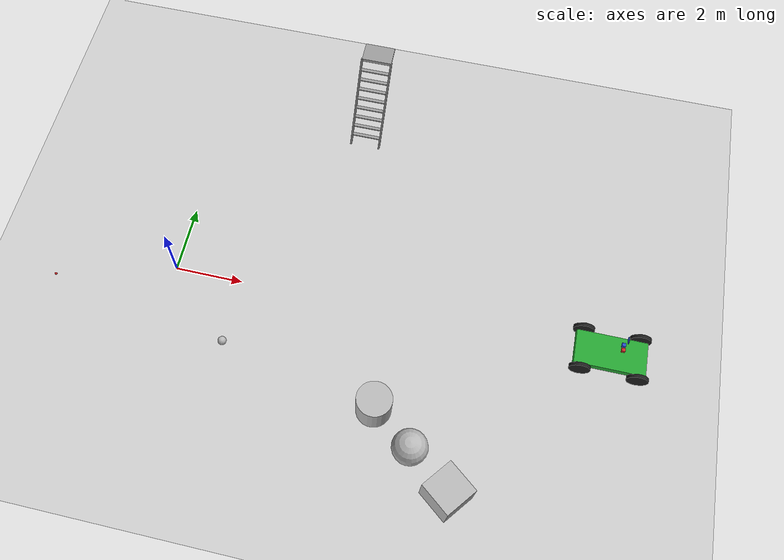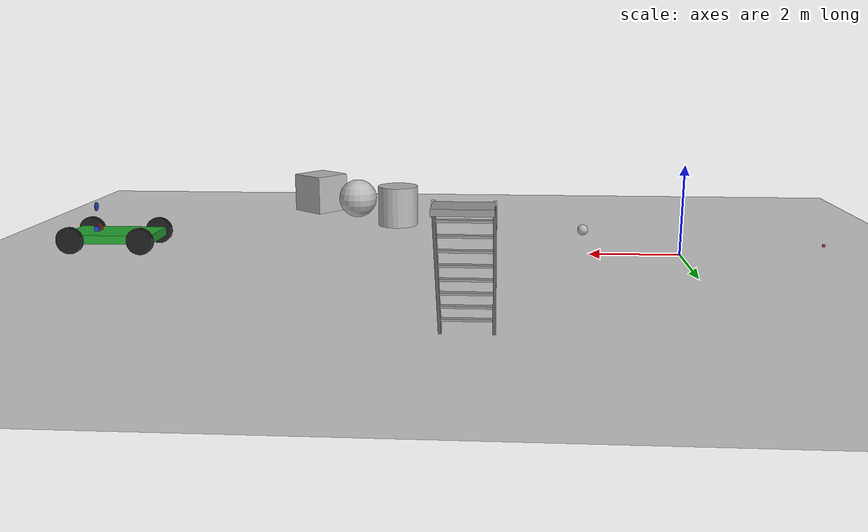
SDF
<sdf version="1.6">
 <world name="default">
  <light name="sun" type="directional">
   <pose>0 0 15 0 -0 0</pose>
   <diffuse>1 1 1 1</diffuse>
   <specular>0.1 0.1 0.1 1</specular>
   <attenuation>
    <range>1000</range>
    <constant>0.9</constant>
    <linear>0.01</linear>
    <quadratic>0.001</quadratic>
   </attenuation>
   <direction>-0.5 0.5 -1</direction>
  </light>
  <model name="ground_plane">
   <static>1</static>
   <link name="link">
    <collision name="collision">
     <geometry><plane><normal>0 0 1</normal><size>100 100</size></plane></geometry>
     <surface><friction><ode><mu>100</mu><mu2>50</mu2></ode></friction></surface>
    </collision>
    <visual name="visual">
     <cast_shadows>0</cast_shadows>
     <geometry><plane><normal>0 0 1</normal><size>100 100</size></plane></geometry>
     <material>
      <script><uri>file://media/materials/scripts/gazebo.material</uri><name>Gazebo/Grey</name></script>
     </material>
    </visual>
   </link>
  </model>
  <gravity>0 0 -9.8</gravity>
  <magnetic_field>6e-06 2.3e-05 -4.2e-05</magnetic_field>
  <atmosphere type="adiabatic"/>
  <physics name="default_physics" default="0" type="ode">
   <max_step_size>0.001</max_step_size>
   <real_time_factor>1</real_time_factor>
   <real_time_update_rate>1000</real_time_update_rate>
  </physics>
  <scene><ambient>0.4 0.4 0.4 1</ambient><background>0.7 0.7 0.7 1</background><shadows>1</shadows></scene>
  <spherical_coordinates>
   <surface_model>EARTH_WGS84</surface_model>
   <latitude_deg>0</latitude_deg>
   <longitude_deg>0</longitude_deg>
   <elevation>0</elevation>
   <heading_deg>0</heading_deg>
  </spherical_coordinates>
  <model name="ladder_60deg_0rails">
   <static>1</static>
   <link name="step0">
    <pose>0 0.15396 0.266667 0 -0 0</pose>
    <inertial>
     <mass>9.75482</mass>
     <inertia>
      <ixx>0.00957124</ixx>
      <iyy>0.65963</iyy>
      <izz>0.666842</izz>
      <ixy>0</ixy>
      <ixz>0</ixz>
      <iyz>0</iyz>
     </inertia>
    </inertial>
    <collision name="collision"><geometry><box><size>0.9 0.1016 0.0381</size></box></geometry></collision>
    <visual name="visual">
     <geometry><box><size>0.9 0.1016 0.0381</size></box></geometry>
     <material>
      <script><uri>file://media/materials/scripts/gazebo.material</uri><name>Gazebo/Grey</name></script>
     </material>
    </visual>
   </link>
   <link name="step1">
    <pose>0 0.30792 0.533333 0 -0 0</pose>
    <inertial>
     <mass>9.75482</mass>
     <inertia>
      <ixx>0.00957124</ixx>
      <iyy>0.65963</iyy>
      <izz>0.666842</izz>
      <ixy>0</ixy>
      <ixz>0</ixz>
      <iyz>0</iyz>
     </inertia>
    </inertial>
    <collision name="collision"><geometry><box><size>0.9 0.1016 0.0381</size></box></geometry></collision>
    <visual name="visual">
     <geometry><box><size>0.9 0.1016 0.0381</size></box></geometry>
     <material>
      <script><uri>file://media/materials/scripts/gazebo.material</uri><name>Gazebo/Grey</name></script>
     </material>
    </visual>
   </link>
   <link name="step2">
    <pose>0 0.46188 0.8 0 -0 0</pose>
    <inertial>
     <mass>9.75482</mass>
     <inertia>
      <ixx>0.00957124</ixx>
      <iyy>0.65963</iyy>
      <izz>0.666842</izz>
      <ixy>0</ixy>
      <ixz>0</ixz>
      <iyz>0</iyz>
     </inertia>
    </inertial>
    <collision name="collision"><geometry><box><size>0.9 0.1016 0.0381</size></box></geometry></collision>
    <visual name="visual">
     <geometry><box><size>0.9 0.1016 0.0381</size></box></geometry>
     <material>
      <script><uri>file://media/materials/scripts/gazebo.material</uri><name>Gazebo/Grey</name></script>
     </material>
    </visual>
   </link>
   <link name="step3">
    <pose>0 0.61584 1.06667 0 -0 0</pose>
    <inertial>
     <mass>9.75482</mass>
     <inertia>
      <ixx>0.00957124</ixx>
      <iyy>0.65963</iyy>
      <izz>0.666842</izz>
      <ixy>0</ixy>
      <ixz>0</ixz>
      <iyz>0</iyz>
     </inertia>
    </inertial>
    <collision name="collision"><geometry><box><size>0.9 0.1016 0.0381</size></box></geometry></collision>
    <visual name="visual">
     <geometry><box><size>0.9 0.1016 0.0381</size></box></geometry>
     <material>
      <script><uri>file://media/materials/scripts/gazebo.material</uri><name>Gazebo/Grey</name></script>
     </material>
    </visual>
   </link>
   <link name="step4">
    <pose>0 0.7698 1.33333 0 -0 0</pose>
    <inertial>
     <mass>9.75482</mass>
     <inertia>
      <ixx>0.00957124</ixx>
      <iyy>0.65963</iyy>
      <izz>0.666842</izz>
      <ixy>0</ixy>
      <ixz>0</ixz>
      <iyz>0</iyz>
     </inertia>
    </inertial>
    <collision name="collision"><geometry><box><size>0.9 0.1016 0.0381</size></box></geometry></collision>
    <visual name="visual">
     <geometry><box><size>0.9 0.1016 0.0381</size></box></geometry>
     <material>
      <script><uri>file://media/materials/scripts/gazebo.material</uri><name>Gazebo/Grey</name></script>
     </material>
    </visual>
   </link>
   <link name="step5">
    <pose>0 0.92376 1.6 0 -0 0</pose>
    <inertial>
     <mass>9.75482</mass>
     <inertia>
      <ixx>0.00957124</ixx>
      <iyy>0.65963</iyy>
      <izz>0.666842</izz>
      <ixy>0</ixy>
      <ixz>0</ixz>
      <iyz>0</iyz>
     </inertia>
    </inertial>
    <collision name="collision"><geometry><box><size>0.9 0.1016 0.0381</size></box></geometry></collision>
    <visual name="visual">
     <geometry><box><size>0.9 0.1016 0.0381</size></box></geometry>
     <material>
      <script><uri>file://media/materials/scripts/gazebo.material</uri><name>Gazebo/Grey</name></script>
     </material>
    </visual>
   </link>
   <link name="step6">
    <pose>0 1.07772 1.86667 0 -0 0</pose>
    <inertial>
     <mass>9.75482</mass>
     <inertia>
      <ixx>0.00957124</ixx>
      <iyy>0.65963</iyy>
      <izz>0.666842</izz>
      <ixy>0</ixy>
      <ixz>0</ixz>
      <iyz>0</iyz>
     </inertia>
    </inertial>
    <collision name="collision"><geometry><box><size>0.9 0.1016 0.0381</size></box></geometry></collision>
    <visual name="visual">
     <geometry><box><size>0.9 0.1016 0.0381</size></box></geometry>
     <material>
      <script><uri>file://media/materials/scripts/gazebo.material</uri><name>Gazebo/Grey</name></script>
     </material>
    </visual>
   </link>
   <link name="step7">
    <pose>0 1.23168 2.13333 0 -0 0</pose>
    <inertial>
     <mass>9.75482</mass>
     <inertia>
      <ixx>0.00957124</ixx>
      <iyy>0.65963</iyy>
      <izz>0.666842</izz>
      <ixy>0</ixy>
      <ixz>0</ixz>
      <iyz>0</iyz>
     </inertia>
    </inertial>
    <collision name="collision"><geometry><box><size>0.9 0.1016 0.0381</size></box></geometry></collision>
    <visual name="visual">
     <geometry><box><size>0.9 0.1016 0.0381</size></box></geometry>
     <material>
      <script><uri>file://media/materials/scripts/gazebo.material</uri><name>Gazebo/Grey</name></script>
     </material>
    </visual>
   </link>
   <link name="landing">
    <pose>0 1.68564 2.4 0 -0 0</pose>
    <inertial>
     <mass>57.6072</mass>
     <inertia><ixx>1.73518</ixx><iyy>3.89545</iyy><izz>5.6167</izz><ixy>0</ixy><ixz>0</ixz><iyz>0</iyz></inertia>
    </inertial>
    <collision name="collision"><geometry><box><size>0.9 0.6 0.1016</size></box></geometry></collision>
    <visual name="visual">
     <geometry><box><size>0.9 0.6 0.1016</size></box></geometry>
     <material>
      <script><uri>file://media/materials/scripts/gazebo.material</uri><name>Gazebo/Grey</name></script>
     </material>
    </visual>
   </link>
   <link name="left_side_wall">
    <pose>-0.45 0.69282 1.2 1.0472 -0 0</pose>
    <collision name="collision"><geometry><box><size>0.0508 2.85128 0.13</size></box></geometry></collision>
    <visual name="visual">
     <geometry><box><size>0.0508 2.85128 0.13</size></box></geometry>
     <material>
      <script><uri>file://media/materials/scripts/gazebo.material</uri><name>Gazebo/Grey</name></script>
     </material>
    </visual>
   </link>
   <link name="right_side_wall">
    <pose>0.45 0.69282 1.2 1.0472 -0 0</pose>
    <collision name="collision"><geometry><box><size>0.0508 2.85128 0.13</size></box></geometry></collision>
    <visual name="visual">
     <geometry><box><size>0.0508 2.85128 0.13</size></box></geometry>
     <material>
      <script><uri>file://media/materials/scripts/gazebo.material</uri><name>Gazebo/Grey</name></script>
     </material>
    </visual>
   </link>
   <pose>4.51503 5.56877 0 0 -0 0</pose>
  </model>
  <model name="textured_shapes">
   <pose>7.78933 -3.86858 0.5 0 -0 0.900449</pose>
   <link name="box">
    <pose>0 -1.5 0 0 -0 0</pose>
    <collision name="collision"><geometry><box><size>1 1 1</size></box></geometry></collision>
    <visual name="visual">
     <geometry><box><size>1 1 1</size></box></geometry>
     <material>
      <script>
       <uri>model://textured_shapes/materials/scripts</uri>
       <uri>model://textured_shapes/materials/textures</uri>
       <name>TexturedShape/Squares</name>
      </script>
     </material>
    </visual>
    <inertial>
     <inertia><ixx>1</ixx><ixy>0</ixy><ixz>0</ixz><iyy>1</iyy><iyz>0</iyz><izz>1</izz></inertia>
     <mass>1</mass>
    </inertial>
   </link>
   <link name="sphere">
    <collision name="collision"><geometry><sphere><radius>0.5</radius></sphere></geometry></collision>
    <visual name="visual">
     <geometry><sphere><radius>0.5</radius></sphere></geometry>
     <material>
      <script>
       <uri>model://textured_shapes/materials/scripts</uri>
       <uri>model://textured_shapes/materials/textures</uri>
       <name>TexturedShape/Squares</name>
      </script>
     </material>
    </visual>
    <inertial>
     <inertia><ixx>1</ixx><ixy>0</ixy><ixz>0</ixz><iyy>1</iyy><iyz>0</iyz><izz>1</izz></inertia>
     <mass>1</mass>
    </inertial>
   </link>
   <link name="cylinder">
    <pose>0 1.5 0 0 -0 0</pose>
    <collision name="collision">
     <geometry><cylinder><radius>0.5</radius><length>1</length></cylinder></geometry>
    </collision>
    <visual name="visual">
     <geometry><cylinder><radius>0.5</radius><length>1</length></cylinder></geometry>
     <material>
      <script>
       <uri>model://textured_shapes/materials/scripts</uri>
       <uri>model://textured_shapes/materials/textures</uri>
       <name>TexturedShape/Squares</name>
      </script>
     </material>
    </visual>
    <inertial>
     <inertia><ixx>1</ixx><ixy>0</ixy><ixz>0</ixz><iyy>1</iyy><iyz>0</iyz><izz>1</izz></inertia>
     <mass>1</mass>
    </inertial>
   </link>
  </model>
  <model name="car">
   <link name="chassis">
    <pose>0 0 0.3 0 -0 0</pose>
    <collision name="collision"><geometry><box><size>2 1 0.2</size></box></geometry></collision>
    <visual name="visual">
     <geometry><box><size>2 1 0.2</size></box></geometry>
     <material>
      <script><uri>file://media/materials/scripts/gazebo.material</uri><name>Gazebo/Green</name></script>
     </material>
    </visual>
    <inertial>
     <inertia><ixx>1</ixx><ixy>0</ixy><ixz>0</ixz><iyy>1</iyy><iyz>0</iyz><izz>1</izz></inertia>
     <mass>1</mass>
    </inertial>
   </link>
   <link name="front_left_wheel">
    <pose>0.8 0.6 0.3 -0 1.5707 1.5707</pose>
    <collision name="collision">
     <geometry><cylinder><radius>0.3</radius><length>0.1</length></cylinder></geometry>
    </collision>
    <visual name="visual">
     <geometry><cylinder><radius>0.3</radius><length>0.1</length></cylinder></geometry>
     <material>
      <script><uri>file://media/materials/scripts/gazebo.material</uri><name>Gazebo/Black</name></script>
     </material>
    </visual>
    <inertial>
     <inertia><ixx>1</ixx><ixy>0</ixy><ixz>0</ixz><iyy>1</iyy><iyz>0</iyz><izz>1</izz></inertia>
     <mass>1</mass>
    </inertial>
   </link>
   <link name="front_right_wheel">
    <pose>0.8 -0.6 0.3 -0 1.5707 1.5707</pose>
    <collision name="collision">
     <geometry><cylinder><radius>0.3</radius><length>0.1</length></cylinder></geometry>
    </collision>
    <visual name="visual">
     <geometry><cylinder><radius>0.3</radius><length>0.1</length></cylinder></geometry>
     <material>
      <script><uri>file://media/materials/scripts/gazebo.material</uri><name>Gazebo/Black</name></script>
     </material>
    </visual>
    <inertial>
     <inertia><ixx>1</ixx><ixy>0</ixy><ixz>0</ixz><iyy>1</iyy><iyz>0</iyz><izz>1</izz></inertia>
     <mass>1</mass>
    </inertial>
   </link>
   <link name="back_right_wheel">
    <pose>-0.8 -0.6 0.3 -0 1.5707 1.5707</pose>
    <collision name="collision">
     <geometry><cylinder><radius>0.3</radius><length>0.1</length></cylinder></geometry>
    </collision>
    <visual name="visual">
     <geometry><cylinder><radius>0.3</radius><length>0.1</length></cylinder></geometry>
     <material>
      <script><uri>file://media/materials/scripts/gazebo.material</uri><name>Gazebo/Black</name></script>
     </material>
    </visual>
    <inertial>
     <inertia><ixx>1</ixx><ixy>0</ixy><ixz>0</ixz><iyy>1</iyy><iyz>0</iyz><izz>1</izz></inertia>
     <mass>1</mass>
    </inertial>
   </link>
   <link name="back_left_wheel">
    <pose>-0.8 0.6 0.3 -0 1.5707 1.5707</pose>
    <collision name="collision">
     <geometry><cylinder><radius>0.3</radius><length>0.1</length></cylinder></geometry>
    </collision>
    <visual name="visual">
     <geometry><cylinder><radius>0.3</radius><length>0.1</length></cylinder></geometry>
     <material>
      <script><uri>file://media/materials/scripts/gazebo.material</uri><name>Gazebo/Black</name></script>
     </material>
    </visual>
    <inertial>
     <inertia><ixx>1</ixx><ixy>0</ixy><ixz>0</ixz><iyy>1</iyy><iyz>0</iyz><izz>1</izz></inertia>
     <mass>1</mass>
    </inertial>
   </link>
   <link name="gas_pedal">
    <pose>0.3 0.1 0.5 0 -0 0</pose>
    <collision name="collision"><geometry><box><size>0.1 0.1 0.1</size></box></geometry></collision>
    <visual name="visual">
     <geometry><box><size>0.1 0.1 0.1</size></box></geometry>
     <material>
      <script><uri>file://media/materials/scripts/gazebo.material</uri><name>Gazebo/Red</name></script>
     </material>
    </visual>
    <inertial>
     <inertia><ixx>1</ixx><ixy>0</ixy><ixz>0</ixz><iyy>1</iyy><iyz>0</iyz><izz>1</izz></inertia>
     <mass>1</mass>
    </inertial>
   </link>
   <link name="brake_pedal">
    <pose>0.3 0.25 0.5 0 -0 0</pose>
    <collision name="collision"><geometry><box><size>0.1 0.1 0.1</size></box></geometry></collision>
    <visual name="visual">
     <geometry><box><size>0.1 0.1 0.1</size></box></geometry>
     <material>
      <script><uri>file://media/materials/scripts/gazebo.material</uri><name>Gazebo/Blue</name></script>
     </material>
    </visual>
    <inertial>
     <inertia><ixx>1</ixx><ixy>0</ixy><ixz>0</ixz><iyy>1</iyy><iyz>0</iyz><izz>1</izz></inertia>
     <mass>1</mass>
    </inertial>
   </link>
   <link name="steering_wheel">
    <pose>0.3 0.2 1 0 1.5707 0</pose>
    <collision name="collision">
     <geometry><cylinder><radius>0.1</radius><length>0.01</length></cylinder></geometry>
    </collision>
    <visual name="visual">
     <geometry><cylinder><radius>0.1</radius><length>0.01</length></cylinder></geometry>
     <material>
      <script><uri>file://media/materials/scripts/gazebo.material</uri><name>Gazebo/Blue</name></script>
     </material>
    </visual>
    <inertial>
     <inertia><ixx>1</ixx><ixy>0</ixy><ixz>0</ixz><iyy>1</iyy><iyz>0</iyz><izz>1</izz></inertia>
     <mass>1</mass>
    </inertial>
   </link>
   <joint name="gas_joint" type="prismatic">
    <parent>chassis</parent>
    <child>gas_pedal</child>
    <axis>
     <xyz>1 0 0</xyz>
     <limit><lower>0</lower><upper>0.2</upper></limit>
     <use_parent_model_frame>1</use_parent_model_frame>
     <dynamics><spring_reference>0</spring_reference><spring_stiffness>0</spring_stiffness></dynamics>
    </axis>
   </joint>
   <joint name="brake_joint" type="prismatic">
    <parent>chassis</parent>
    <child>brake_pedal</child>
    <axis>
     <xyz>1 0 0</xyz>
     <limit><lower>0</lower><upper>0.2</upper></limit>
     <use_parent_model_frame>1</use_parent_model_frame>
     <dynamics><spring_reference>0</spring_reference><spring_stiffness>0</spring_stiffness></dynamics>
    </axis>
   </joint>
   <joint name="steering_joint" type="revolute">
    <parent>chassis</parent>
    <child>steering_wheel</child>
    <axis>
     <xyz>1 0 0</xyz>
     <limit><lower>-7.853</lower><upper>7.853</upper></limit>
     <use_parent_model_frame>1</use_parent_model_frame>
     <dynamics><spring_reference>0</spring_reference><spring_stiffness>0</spring_stiffness></dynamics>
    </axis>
   </joint>
   <joint name="front_left_joint" type="revolute2">
    <parent>chassis</parent>
    <child>front_left_wheel</child>
    <axis>
     <xyz>0 0 1</xyz>
     <limit><lower>8.32176e-06</lower><upper>8.32176e-06</upper></limit>
     <use_parent_model_frame>1</use_parent_model_frame>
     <dynamics><spring_reference>0</spring_reference><spring_stiffness>0</spring_stiffness></dynamics>
    </axis>
    <axis2>
     <xyz>0 1 0</xyz>
     <use_parent_model_frame>1</use_parent_model_frame>
     <dynamics><spring_reference>0</spring_reference><spring_stiffness>0</spring_stiffness></dynamics>
    </axis2>
    <physics><ode><limit><cfm>0</cfm><erp>0.9</erp></limit></ode></physics>
   </joint>
   <joint name="front_right_joint" type="revolute2">
    <parent>chassis</parent>
    <child>front_right_wheel</child>
    <axis>
     <xyz>0 0 1</xyz>
     <limit><lower>8.32176e-06</lower><upper>8.32176e-06</upper></limit>
     <use_parent_model_frame>1</use_parent_model_frame>
     <dynamics><spring_reference>0</spring_reference><spring_stiffness>0</spring_stiffness></dynamics>
    </axis>
    <axis2>
     <xyz>0 1 0</xyz>
     <use_parent_model_frame>1</use_parent_model_frame>
     <dynamics><spring_reference>0</spring_reference><spring_stiffness>0</spring_stiffness></dynamics>
    </axis2>
    <physics><ode><limit><cfm>0</cfm><erp>0.9</erp></limit></ode></physics>
   </joint>
   <joint name="back_right_joint" type="revolute2">
    <parent>chassis</parent>
    <child>back_right_wheel</child>
    <axis>
     <xyz>0 0 1</xyz>
     <limit><lower>0</lower><upper>0</upper></limit>
     <use_parent_model_frame>1</use_parent_model_frame>
     <dynamics><spring_reference>0</spring_reference><spring_stiffness>0</spring_stiffness></dynamics>
    </axis>
    <axis2>
     <xyz>0 1 0</xyz>
     <use_parent_model_frame>1</use_parent_model_frame>
     <dynamics><spring_reference>0</spring_reference><spring_stiffness>0</spring_stiffness></dynamics>
    </axis2>
    <physics><ode><limit><cfm>0</cfm><erp>0.9</erp></limit></ode></physics>
   </joint>
   <joint name="back_left_joint" type="revolute2">
    <parent>chassis</parent>
    <child>back_left_wheel</child>
    <axis>
     <xyz>0 0 1</xyz>
     <limit><lower>0</lower><upper>0</upper></limit>
     <use_parent_model_frame>1</use_parent_model_frame>
     <dynamics><spring_reference>0</spring_reference><spring_stiffness>0</spring_stiffness></dynamics>
    </axis>
    <axis2>
     <xyz>0 1 0</xyz>
     <use_parent_model_frame>1</use_parent_model_frame>
     <dynamics><spring_reference>0</spring_reference><spring_stiffness>0</spring_stiffness></dynamics>
    </axis2>
    <physics><ode><limit><cfm>0</cfm><erp>0.9</erp></limit></ode></physics>
   </joint>
   <plugin name="vehicle" filename="libVehiclePlugin.so">
    <front_left>front_left_joint</front_left>
    <front_right>front_right_joint</front_right>
    <back_left>back_left_joint</back_left>
    <back_right>back_right_joint</back_right>
    <gas>gas_joint</gas>
    <brake>brake_joint</brake>
    <steering>steering_joint</steering>
    <front_power>10</front_power>
    <rear_power>10</rear_power>
    <tire_angle_range>0.5</tire_angle_range>
    <max_speed>10</max_speed>
    <aero_load>0.1</aero_load>
   </plugin>
   <pose>12.7761 0.05094 -0.002615 -0.000273 0.000908 0.001398</pose>
  </model>
  <model name="frc2016_ball">
   <pose>1.98684 -1.95263 0.127 0 -0 0</pose>
   <link name="link">
    <inertial>
     <mass>0.213</mass>
     <inertia>
      <ixx>0.00322667</ixx>
      <ixy>0</ixy>
      <ixz>0</ixz>
      <iyy>0.00322667</iyy>
      <iyz>0</iyz>
      <izz>0.00322667</izz>
     </inertia>
    </inertial>
    <visual name="visual"><geometry><sphere><radius>0.127</radius></sphere></geometry></visual>
    <collision name="collision">
     <geometry><sphere><radius>0.127</radius></sphere></geometry>
     <surface>
      <bounce><restitution_coefficient>0.15937</restitution_coefficient><threshold>0</threshold></bounce>
      <contact><ode><max_vel>100</max_vel><min_depth>0.001</min_depth></ode></contact>
     </surface>
    </collision>
   </link>
  </model>
  <model name="cricket_ball">
   <link name="link">
    <pose>0 0 0.0375 0 -0 0</pose>
    <inertial>
     <mass>0.1467</mass>
     <inertia>
      <ixx>8.25187e-05</ixx>
      <ixy>0</ixy>
      <ixz>0</ixz>
      <iyy>8.25187e-05</iyy>
      <iyz>0</iyz>
      <izz>8.25187e-05</izz>
     </inertia>
    </inertial>
    <collision name="collision">
     <geometry><sphere><radius>0.0375</radius></sphere></geometry>
     <surface>
      <contact>
       <poissons_ratio>0.347</poissons_ratio>
       <elastic_modulus>8.8e+09</elastic_modulus>
       <ode><kp>100000</kp><kd>100</kd><max_vel>100</max_vel><min_depth>0.001</min_depth></ode>
      </contact>
      <friction>
       <torsional>
        <coefficient>1</coefficient>
        <use_patch_radius>0</use_patch_radius>
        <surface_radius>0.01</surface_radius>
       </torsional>
      </friction>
     </surface>
    </collision>
    <visual name="visual">
     <geometry><sphere><radius>0.0375</radius></sphere></geometry>
     <material>
      <script><uri>file://media/materials/scripts/gazebo.material</uri><name>Gazebo/Red</name></script>
     </material>
    </visual>
    <velocity_decay><linear>0</linear><angular>0.005</angular></velocity_decay>
   </link>
   <pose>-3.44494 -0.980405 -0.001014 0 -0 0</pose>
  </model>
 </world>
</sdf>
